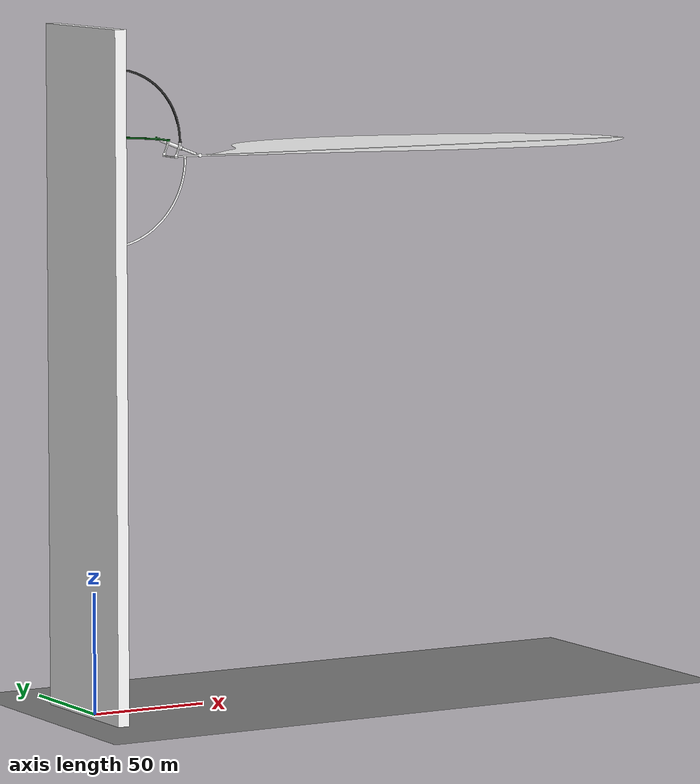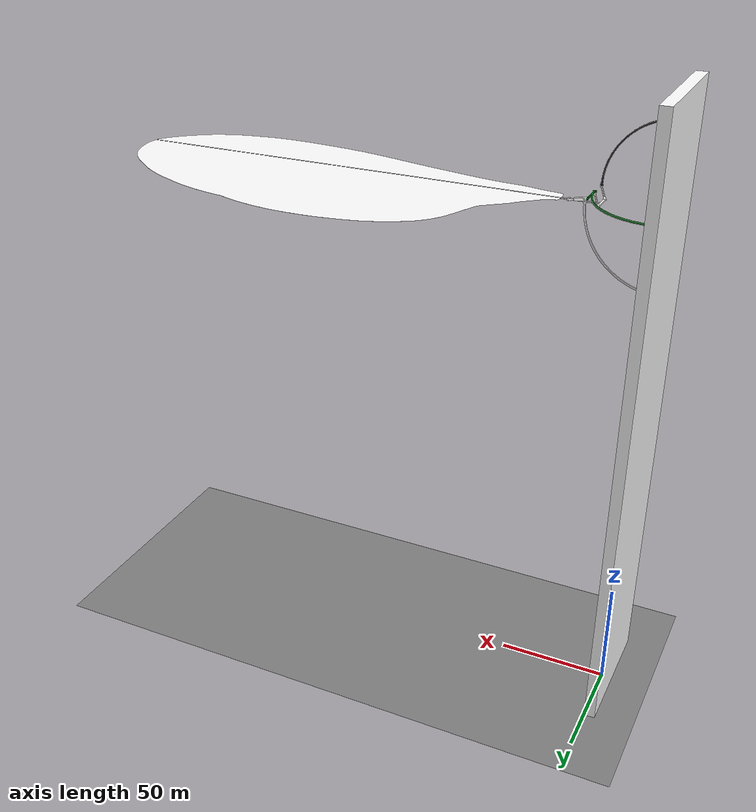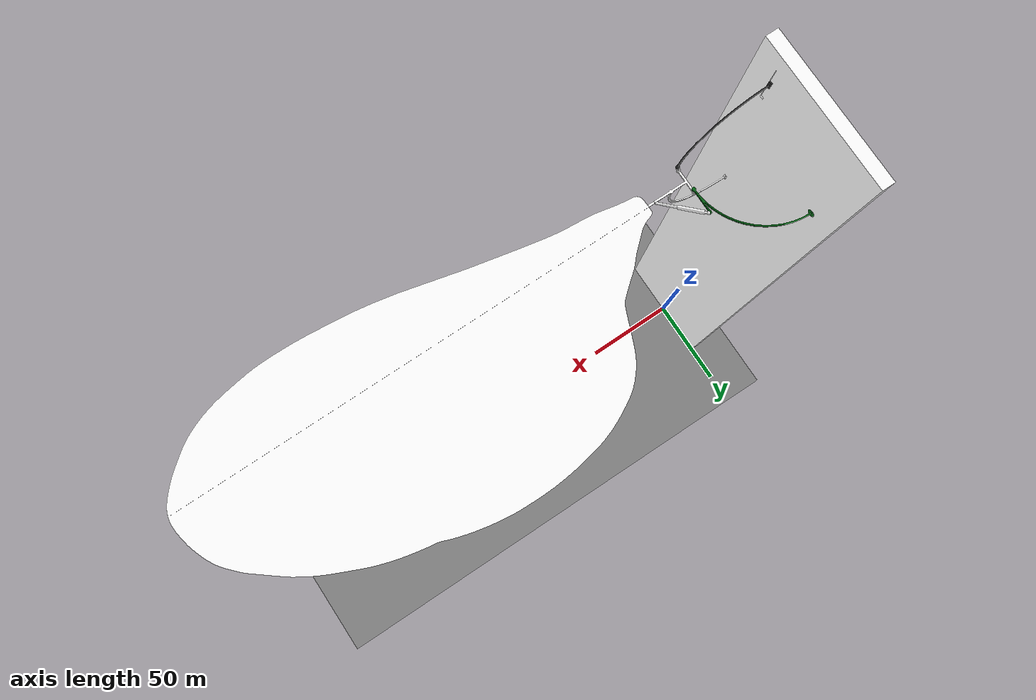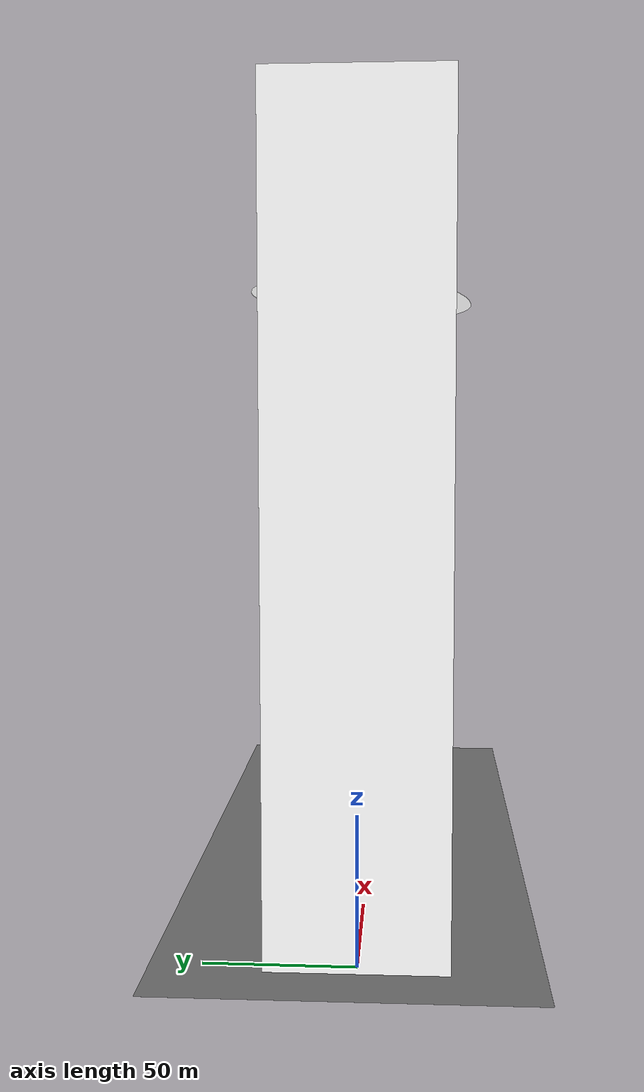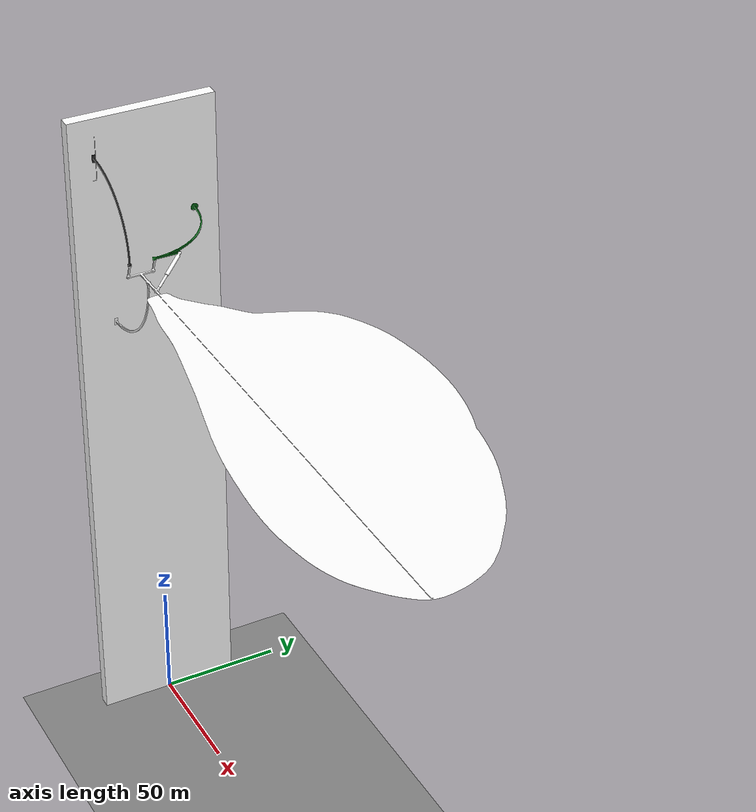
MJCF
<?xml version="1.0" ?>
<mujoco model="simplified01">
    <include file="simplified01_auto.xml"/>
    <include file="actuators.xml"/>

    <compiler angle="radian" coordinate="local"/>
    <option timestep="0.004" iterations="100" integrator="Euler" cone="pyramidal" jacobian="dense" solver="Newton">
        <flag sensornoise="enable"/>
    </option>
</mujoco>

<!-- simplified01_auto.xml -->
<mujoco model="simplified01_auto">
    <compiler angle="radian" coordinate="local"/>
    <option timestep="0.002" iterations="100" integrator="Euler" cone="pyramidal" jacobian="dense" solver="Newton">
        <flag sensornoise="enable"/>
    </option>
    <size nconmax="-1" njmax="-1" nuserdata="100"/>
    <asset>
        <mesh name="mesh_mount_plate" file="mesh_stl/mount_plate.stl"/>
        <mesh name="mesh_pwp" file="mesh_stl/pwp.stl"/>
        <mesh name="mesh_ax1_and_vein" file="mesh_stl/ax1_and_vein.stl"/>
        <mesh name="mesh_wing" file="mesh_stl/wing.stl"/>
        <mesh name="mesh_scu" file="mesh_stl/scu.stl"/>
        <mesh name="mesh_mu1_001" file="mesh_stl/mu1_001.stl"/>
        <mesh name="mesh_sla" file="mesh_stl/sla.stl"/>
        <mesh name="mesh_ax3" file="mesh_stl/ax3.stl"/>
        <mesh name="mesh_ax4" file="mesh_stl/ax4.stl"/>
        <mesh name="mesh_mu1_002" file="mesh_stl/mu1_002.stl"/>
    </asset>
    <worldbody>
        <body name="mount_plate" pos="-0.31843575835227966 1.7132188081741333 210.06983947753906" quat="1.0 0.0 0.0 0.0">
            <geom name="mount_plate" type="mesh" pos="0 0 0" quat="1 0 0 0" rgba="1.0 1.0 1.0 1.0" density="1000.0" contype="1" conaffinity="1" mesh="mesh_mount_plate"/>
            <body name="pwp" pos="32.242008209228516 -16.733434677124023 14.035629272460938" quat="1.0 0.0 0.0 0.0">
                <geom name="pwp" type="mesh" pos="0 0 0" quat="1 0 0 0" rgba="1.0 1.0 1.0 1.0" density="0.0010000000474974513" contype="1" conaffinity="1" mesh="mesh_pwp"/>
                <body name="ax1_and_vein" pos="0.45813751220703125 0.03670692443847656 3.438018798828125" quat="1.0 0.0 0.0 0.0">
                    <geom name="ax1_and_vein" type="mesh" pos="0 0 0" quat="1 0 0 0" rgba="1.0 1.0 1.0 1.0" density="0.0010000000474974513" contype="1" conaffinity="1" mesh="mesh_ax1_and_vein"/>
                    <body name="wing" pos="94.05638122558594 13.88726806640625 -0.008575439453125" quat="1.0 0.0 0.0 0.0">
                        <geom name="wing" type="mesh" pos="0 0 0" quat="1 0 0 0" rgba="1.0 1.0 1.0 1.0" density="0.0010000000474974513" contype="1" conaffinity="1" mesh="mesh_wing"/>
                    </body>
                    <joint name="ax1_and_vein_joint_alpha" type="hinge" axis="1.0 0.0 0.0" pos="2.121429443359375 -0.030618667602539062 -0.5782012939453125" stiffness="0.0" damping="0.0" springref="0.0" limited="false"/>
                    <joint name="ax1_and_vein_joint_phi" type="hinge" axis="-4.371138828673793e-08 1.0 0.0" pos="2.121429443359375 -0.030618667602539062 -0.5782012939453125" stiffness="0.0" damping="0.0" springref="0.0" limited="false"/>
                    <joint name="ax1_and_vein_joint_theta" type="hinge" axis="-4.371138828673793e-08 0.0 1.0" pos="2.121429443359375 -0.030618667602539062 -0.5782012939453125" stiffness="0.0" damping="0.0" springref="0.0" limited="false"/>
                </body>
            </body>
            <body name="scu" pos="19.613893508911133 -21.713220596313477 35.47630310058594" quat="1.0 0.0 0.0 0.0">
                <geom name="scu" type="mesh" pos="0 0 0" quat="1 0 0 0" rgba="0.17434938251972198 0.17434938251972198 0.17434938251972198 1.0" density="1000.0" contype="1" conaffinity="1" mesh="mesh_scu"/>
                <body name="mu1_001" pos="9.3072509765625 -0.0061244964599609375 -14.978973388671875" quat="1.0 0.0 0.0 0.0">
                    <geom name="mu1_001" type="mesh" pos="0 0 0" quat="1 0 0 0" rgba="1.0 1.0 1.0 1.0" density="0.0010000000474974513" contype="1" conaffinity="1" mesh="mesh_mu1_001"/>
                    <joint name="mu1_001_joint_axis1" type="hinge" axis="1.0 0.0 0.0" pos="0.8966922760009766 0.005908966064453125 2.46697998046875" stiffness="0.0" damping="0.0" springref="0.0" limited="false"/>
                    <joint name="mu1_001_joint_axis2" type="hinge" axis="-4.371138828673793e-08 1.0 0.0" pos="0.8966922760009766 0.005908966064453125 2.46697998046875" stiffness="0.0" damping="0.0" springref="0.0" limited="false"/>
                </body>
                <joint name="scu_joint" type="slide" axis="-4.371138828673793e-08 0.0 1.0" pos="-19.79545783996582 1.9073486328125e-06 18.123046875" stiffness="0.0" damping="0.0" springref="0.0" limited="false"/>
            </body>
            <body name="sla" pos="23.602981567382812 -1.0469118356704712 23.60693359375" quat="1.0 0.0 0.0 0.0">
                <geom name="sla" type="mesh" pos="0 0 0" quat="1 0 0 0" rgba="0.021615078672766685 0.37809109687805176 0.07705635577440262 1.0" density="1000.0" contype="1" conaffinity="1" mesh="mesh_sla"/>
                <body name="ax3" pos="8.12858772277832 -2.379412889480591 -0.68353271484375" quat="1.0 0.0 0.0 0.0">
                    <geom name="ax3" type="mesh" pos="0 0 0" quat="1 0 0 0" rgba="1.0 1.0 1.0 1.0" density="0.0010000000474974513" contype="1" conaffinity="1" mesh="mesh_ax3"/>
                    <body name="ax4" pos="8.705533981323242 -11.075343132019043 -4.805877685546875" quat="1.0 0.0 0.0 0.0">
                        <geom name="ax4" type="mesh" pos="0 0 0" quat="1 0 0 0" rgba="1.0 1.0 1.0 1.0" density="0.0010000000474974513" contype="1" conaffinity="1" mesh="mesh_ax4"/>
                        <joint name="ax4_joint" type="slide" axis="0.5851859450340271 -0.7441059947013855 -0.3222788870334625" pos="-7.244293212890625 9.21168041229248 3.989654541015625" stiffness="0.0" damping="0.0" springref="0.0" limited="false"/>
                    </body>
                    <joint name="ax3_joint_axis1" type="hinge" axis="1.1924880638503055e-08 -1.0 0.0" pos="-1.3476753234863281 1.7118550539016724 0.732635498046875" stiffness="0.0" damping="0.0" springref="0.0" limited="false"/>
                    <joint name="ax3_joint_axis2" type="hinge" axis="-4.371138828673793e-08 0.0 -1.0" pos="-1.3476753234863281 1.7118550539016724 0.732635498046875" stiffness="0.0" damping="0.0" springref="0.0" limited="false"/>
                </body>
                <body name="mu1_002" pos="5.319728851318359 -10.672431945800781 -3.1098785400390625" quat="1.0 0.0 0.0 0.0">
                    <geom name="mu1_002" type="mesh" pos="0 0 0" quat="1 0 0 0" rgba="1.0 1.0 1.0 1.0" density="0.0010000000474974513" contype="1" conaffinity="1" mesh="mesh_mu1_002"/>
                    <joint name="mu1_002_joint_axis1" type="hinge" axis="1.0 0.0 0.0" pos="0.8957252502441406 0.0061244964599609375 2.43310546875" stiffness="0.0" damping="0.0" springref="0.0" limited="false"/>
                    <joint name="mu1_002_joint_axis2" type="hinge" axis="-4.371138828673793e-08 0.0 -1.0" pos="0.8957252502441406 0.0061244964599609375 2.43310546875" stiffness="0.0" damping="0.0" springref="0.0" limited="false"/>
                </body>
                <joint name="sla_joint" type="hinge" axis="1.0 0.0 0.0" pos="-23.7845458984375 19.33369255065918 0.0499267578125" stiffness="0.0" damping="0.0" springref="0.0" limited="false"/>
            </body>
            <joint name="mount_plate_joint" type="free" axis="1.0 0.0 0.0" pos="0.31843575835227966 -1.7132188081741333 -210.06983947753906" stiffness="0.0" damping="0.0" springref="0.0"/>
        </body>
        <geom name="floor" type="plane" size="335.9676818847656 178.78294372558594 0.41266173124313354 " pos="0.0 0.0 0.0" quat="1.0 0.0 0.0 0.0" density="1000.0" rgba="0.5 0.5 0.5 0.1" contype="1" conaffinity="1"/>
        <light directional="true" cutoff="4" exponent="20" diffuse="1 1 1" specular="0 0 0" pos="0.9 0.3 2.5" dir="-0.9 -0.3 -2.5"/>
    </worldbody>
    <actuator/>
    <equality>
        <connect body1="mu1_001" body2="ax1_and_vein" anchor="-0.8968143463134766 -0.00576019287109375 -2.466827392578125" solimp="1.0 1.0 0.0010000000474974513"/>
        <connect body1="mu1_002" body2="ax1_and_vein" anchor="-0.895172119140625 -0.005763053894042969 -2.4670867919921875" solimp="1.0 1.0 0.0010000000474974513"/>
        <connect body1="ax4" body2="ax1_and_vein" anchor="1.1846847534179688 -1.510329246520996 -0.6544036865234375" solimp="1.0 1.0 0.0010000000474974513"/>
    </equality>
    <sensor/>
</mujoco>

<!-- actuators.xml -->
<mujoco model="actuators">
    <actuator>
        <position name="sla_position" joint="sla_joint" gear="1" forcelimited="false" ctrllimited="false" kp="6.0e11"/>
        <velocity name="sla_velocity" joint="sla_joint" gear="1" forcelimited="false" ctrllimited="false" kv="1.0e10"/>
        <position name="scu_position" joint="scu_joint" gear="1" forcelimited="false" ctrllimited="false" kp="6.0e8"/>
        <velocity name="scu_velocity" joint="scu_joint" gear="1" forcelimited="false" ctrllimited="false" kv="1.0e8"/>
        <position name="ax4_position" joint="ax4_joint" gear="1" forcelimited="false" ctrllimited="false" kp="3.0e5"/>
        <velocity name="ax4_velocity" joint="ax4_joint" gear="1" forcelimited="false" ctrllimited="false" kv="1.0e4"/>
    </actuator>
</mujoco>
